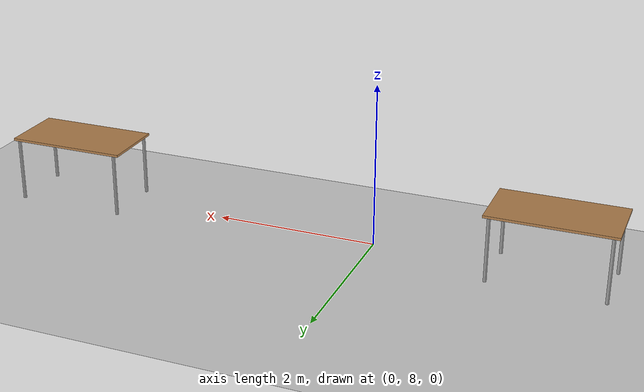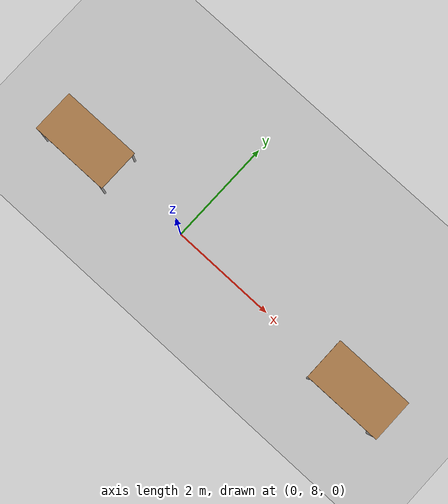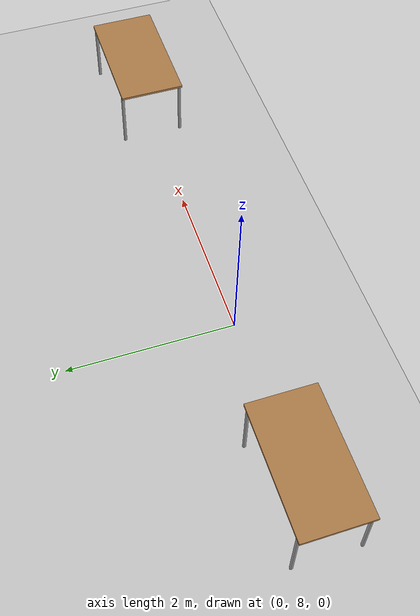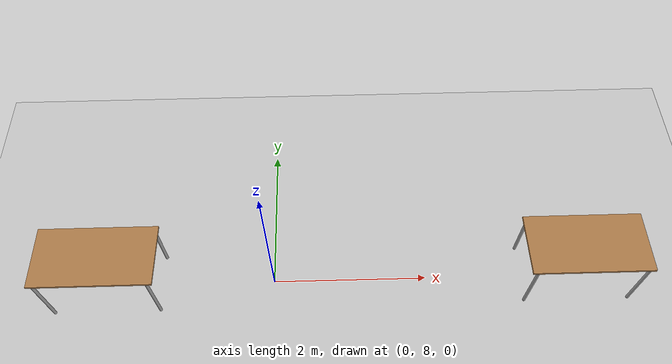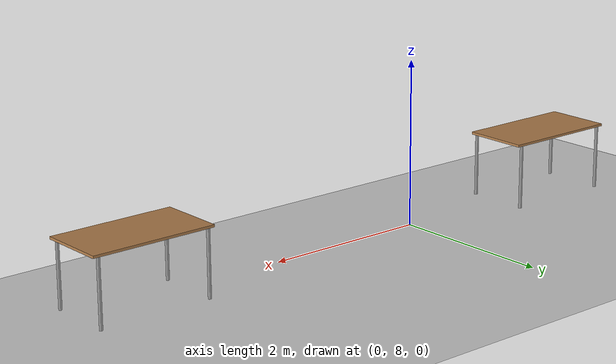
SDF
<sdf version="1.5">
 <world name="default">
  <include><uri>model://sun</uri></include>
  <include><uri>model://ground_plane</uri></include>
  <include><pose>3.938650 8.029755 0 0 0 0</pose><uri>model://table_1</uri></include>
  <include><pose>-2.1420 8.023541 0 0 0 0</pose><uri>model://table_1</uri></include>
 </world>
</sdf>

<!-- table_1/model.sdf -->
<sdf version="1.5">
  <model name="table">
    <static>true</static>
    <link name="link">
      <collision name="surface">
        <pose>0 0 0.8 0 0 0</pose>
        <geometry>
          <box>
            <size>1.5 0.8 0.03</size>
          </box>
        </geometry>
        <surface>
          <friction>
            <ode>
              <mu>0.6</mu>
              <mu2>0.6</mu2>
            </ode>
          </friction>
        </surface>
      </collision>
      <visual name="visual1">
        <pose>0 0 0.8 0 0 0</pose>
        <geometry>
          <box>
            <size>1.5 0.8 0.03</size>
          </box>
        </geometry>
        <material>
          <script>
            <uri>file://media/materials/scripts/gazebo.material</uri>
            <name>Gazebo/Wood</name>
          </script>
        </material>
      </visual>
      <collision name="front_left_leg">
        <pose>0.68 0.38 0.4 0 0 0</pose>
        <geometry>
          <cylinder>
            <radius>0.02</radius>
            <length>0.8</length>
          </cylinder>
        </geometry>
      </collision>
      <visual name="front_left_leg">
        <pose>0.68 0.38 0.4 0 0 0</pose>
        <geometry>
          <cylinder>
            <radius>0.02</radius>
            <length>0.8</length>
          </cylinder>
        </geometry>
        <material>
          <script>
            <uri>file://media/materials/scripts/gazebo.material</uri>
            <name>Gazebo/Grey</name>
          </script>
        </material>
      </visual>
      <collision name="front_right_leg">
        <pose>0.68 -0.38 0.4 0 0 0</pose>
        <geometry>
          <cylinder>
            <radius>0.02</radius>
            <length>0.8</length>
          </cylinder>
        </geometry>
      </collision>
      <visual name="front_right_leg">
        <pose>0.68 -0.38 0.4 0 0 0</pose>
        <geometry>
          <cylinder>
            <radius>0.02</radius>
            <length>0.8</length>
          </cylinder>
        </geometry>
        <material>
          <script>
            <uri>file://media/materials/scripts/gazebo.material</uri>
            <name>Gazebo/Grey</name>
          </script>
        </material>
      </visual>
      <collision name="back_right_leg">
        <pose>-0.68 -0.38 0.4 0 0 0</pose>
        <geometry>
          <cylinder>
            <radius>0.02</radius>
            <length>0.8</length>
          </cylinder>
        </geometry>
      </collision>
      <visual name="back_right_leg">
        <pose>-0.68 -0.38 0.4 0 0 0</pose>
        <geometry>
          <cylinder>
            <radius>0.02</radius>
            <length>0.8</length>
          </cylinder>
        </geometry>
        <material>
          <script>
            <uri>file://media/materials/scripts/gazebo.material</uri>
            <name>Gazebo/Grey</name>
          </script>
        </material>
      </visual>
      <collision name="back_left_leg">
        <pose>-0.68 0.38 0.4 0 0 0</pose>
        <geometry>
          <cylinder>
            <radius>0.02</radius>
            <length>0.8</length>
          </cylinder>
        </geometry>
      </collision>
      <visual name="back_left_leg">
        <pose>-0.68 0.38 0.4 0 0 0</pose>
        <geometry>
          <cylinder>
            <radius>0.02</radius>
            <length>0.8</length>
          </cylinder>
        </geometry>
        <material>
          <script>
            <uri>file://media/materials/scripts/gazebo.material</uri>
            <name>Gazebo/Grey</name>
          </script>
        </material>
      </visual>
    </link>
  </model>
</sdf>
